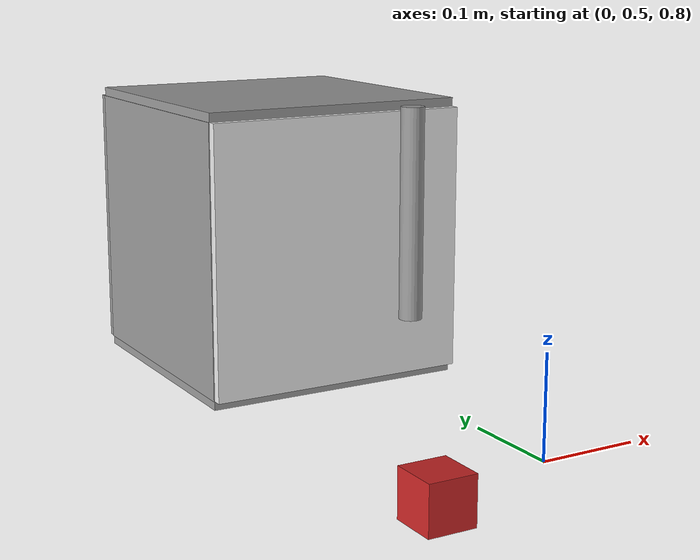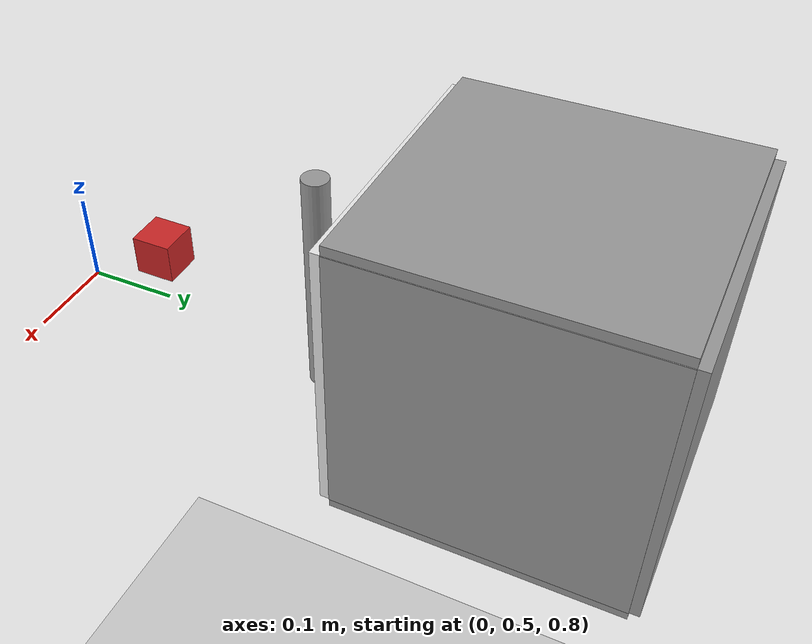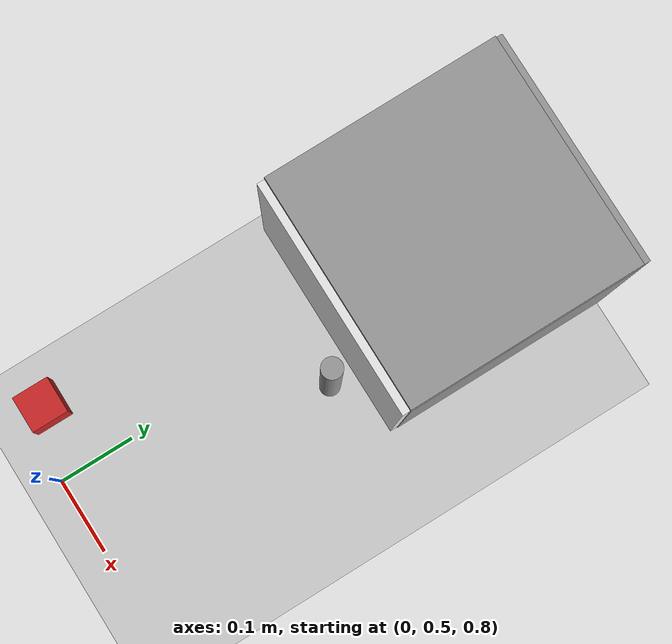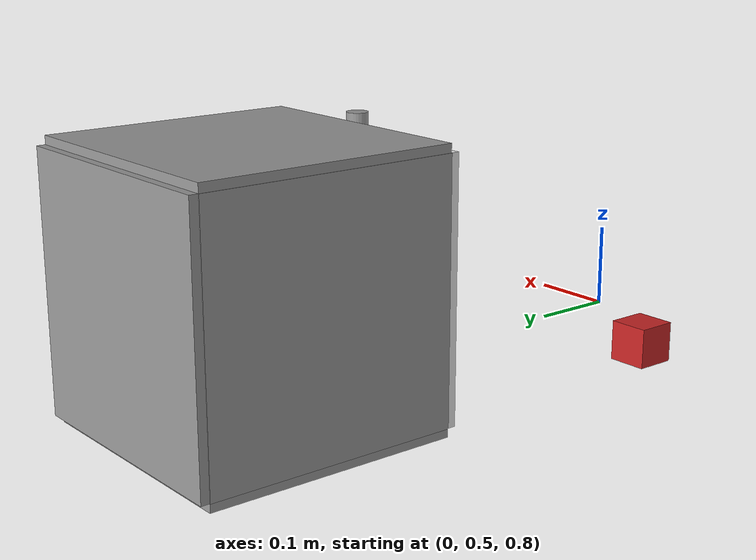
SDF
<sdf version="1.7">
 <world name="default">
  <model name="ground_plane">
   <static>1</static>
   <link name="link">
    <collision name="collision">
     <geometry><plane><normal>0 0 1</normal><size>100 100</size></plane></geometry>
     <surface>
      <contact><collide_bitmask>65535</collide_bitmask></contact>
      <friction><ode><mu>100</mu><mu2>50</mu2></ode></friction>
     </surface>
    </collision>
    <visual name="visual">
     <cast_shadows>0</cast_shadows>
     <geometry><plane><normal>0 0 1</normal><size>100 100</size></plane></geometry>
     <material>
      <script><uri>file://media/materials/scripts/gazebo.material</uri><name>Gazebo/Grey</name></script>
     </material>
    </visual>
   </link>
  </model>
  <model name="unit_box">
   <pose>-0.095003 0.525094 0.777384 1.6e-05 0.000132 1.6e-05</pose>
   <link name="link">
    <inertial>
     <mass>1</mass>
     <inertia>
      <ixx>0.166667</ixx>
      <ixy>0</ixy>
      <ixz>0</ixz>
      <iyy>0.166667</iyy>
      <iyz>0</iyz>
      <izz>0.166667</izz>
     </inertia>
    </inertial>
    <collision name="collision"><geometry><box><size>0.05 0.05 0.05</size></box></geometry></collision>
    <visual name="visual">
     <geometry><box><size>0.05 0.05 0.05</size></box></geometry>
     <material>
      <script><name>Gazebo/Red</name><uri>file://media/materials/scripts/gazebo.material</uri></script>
     </material>
    </visual>
   </link>
  </model>
  <model name="Cabinet30">
   <link name="link_0">
    <inertial>
     <mass>1</mass>
     <inertia>
      <ixx>0.166667</ixx>
      <ixy>0</ixy>
      <ixz>0</ixz>
      <iyy>0.166667</iyy>
      <iyz>0</iyz>
      <izz>0.166667</izz>
     </inertia>
     <joint name="bc" type="fixed">
      <parent>world</parent>
      <child>Cabinet30::link_0</child>
      <physics>
       <ode><implicit_spring_damper>1</implicit_spring_damper><cfm>0.9</cfm><erp>0.2</erp></ode>
       <provide_feedback>1</provide_feedback>
      </physics>
     </joint>
    </inertial>
    <pose>0.028253 0.00951 -0.156009 0 -0 0</pose>
    <visual name="visual">
     <geometry><box><size>0.3 0.3 0.02</size></box></geometry>
     <material>
      <lighting>1</lighting>
      <script><uri>file://media/materials/scripts/gazebo.material</uri><name>Gazebo/Grey</name></script>
      <shader type="pixel"><normal_map>__default__</normal_map></shader>
      <ambient>0.3 0.3 0.3 1</ambient>
      <diffuse>0.7 0.7 0.7 1</diffuse>
      <specular>0.01 0.01 0.01 1</specular>
      <emissive>0 0 0 1</emissive>
     </material>
    </visual>
    <collision name="collision">
     <geometry><box><size>0.3 0.3 0.02</size></box></geometry>
     <surface>
      <friction>
       <ode><mu>1</mu><mu2>1</mu2><fdir1>0 0 0</fdir1><slip1>0</slip1><slip2>0</slip2></ode>
       <torsional>
        <coefficient>1</coefficient>
        <patch_radius>0</patch_radius>
        <surface_radius>0</surface_radius>
        <use_patch_radius>1</use_patch_radius>
        <ode><slip>0</slip></ode>
       </torsional>
      </friction>
      <bounce><restitution_coefficient>0</restitution_coefficient><threshold>1e+06</threshold></bounce>
      <contact>
       <collide_without_contact>0</collide_without_contact>
       <collide_without_contact_bitmask>1</collide_without_contact_bitmask>
       <collide_bitmask>1</collide_bitmask>
       <ode>
        <soft_cfm>0</soft_cfm>
        <soft_erp>0.2</soft_erp>
        <kp>1e+13</kp>
        <kd>1</kd>
        <max_vel>0.01</max_vel>
        <min_depth>0</min_depth>
       </ode>
       <bullet>
        <split_impulse>1</split_impulse>
        <split_impulse_penetration_threshold>-0.01</split_impulse_penetration_threshold>
        <soft_cfm>0</soft_cfm>
        <soft_erp>0.2</soft_erp>
        <kp>1e+13</kp>
        <kd>1</kd>
       </bullet>
      </contact>
     </surface>
    </collision>
   </link>
   <link name="link_0_clone">
    <inertial>
     <mass>1</mass>
     <inertia>
      <ixx>0.166667</ixx>
      <ixy>0</ixy>
      <ixz>0</ixz>
      <iyy>0.166667</iyy>
      <iyz>0</iyz>
      <izz>0.166667</izz>
     </inertia>
    </inertial>
    <pose>0.028253 0.00951 0.143991 0 -0 0</pose>
    <visual name="visual">
     <geometry><box><size>0.3 0.3 0.02</size></box></geometry>
     <material>
      <lighting>1</lighting>
      <script><uri>file://media/materials/scripts/gazebo.material</uri><name>Gazebo/Grey</name></script>
      <shader type="pixel"><normal_map>__default__</normal_map></shader>
      <ambient>0.3 0.3 0.3 1</ambient>
      <diffuse>0.7 0.7 0.7 1</diffuse>
      <specular>0.01 0.01 0.01 1</specular>
      <emissive>0 0 0 1</emissive>
     </material>
    </visual>
    <collision name="collision">
     <geometry><box><size>0.3 0.3 0.02</size></box></geometry>
     <surface>
      <friction>
       <ode><mu>1</mu><mu2>1</mu2><fdir1>0 0 0</fdir1><slip1>0</slip1><slip2>0</slip2></ode>
       <torsional>
        <coefficient>1</coefficient>
        <patch_radius>0</patch_radius>
        <surface_radius>0</surface_radius>
        <use_patch_radius>1</use_patch_radius>
        <ode><slip>0</slip></ode>
       </torsional>
      </friction>
      <bounce><restitution_coefficient>0</restitution_coefficient><threshold>1e+06</threshold></bounce>
      <contact>
       <collide_without_contact>0</collide_without_contact>
       <collide_without_contact_bitmask>1</collide_without_contact_bitmask>
       <collide_bitmask>1</collide_bitmask>
       <ode>
        <soft_cfm>0</soft_cfm>
        <soft_erp>0.2</soft_erp>
        <kp>1e+13</kp>
        <kd>1</kd>
        <max_vel>0.01</max_vel>
        <min_depth>0</min_depth>
       </ode>
       <bullet>
        <split_impulse>1</split_impulse>
        <split_impulse_penetration_threshold>-0.01</split_impulse_penetration_threshold>
        <soft_cfm>0</soft_cfm>
        <soft_erp>0.2</soft_erp>
        <kp>1e+13</kp>
        <kd>1</kd>
       </bullet>
      </contact>
     </surface>
    </collision>
   </link>
   <link name="link_0_clone_clone">
    <inertial>
     <mass>1</mass>
     <inertia>
      <ixx>0.166667</ixx>
      <ixy>0</ixy>
      <ixz>0</ixz>
      <iyy>0.166667</iyy>
      <iyz>0</iyz>
      <izz>0.166667</izz>
     </inertia>
    </inertial>
    <pose>0.028253 0.15951 -0.006009 0 -0 0</pose>
    <visual name="visual">
     <geometry><box><size>0.3 0.002 0.3</size></box></geometry>
     <material>
      <lighting>1</lighting>
      <script><uri>file://media/materials/scripts/gazebo.material</uri><name>Gazebo/Grey</name></script>
      <shader type="pixel"><normal_map>__default__</normal_map></shader>
      <ambient>0.3 0.3 0.3 1</ambient>
      <diffuse>0.7 0.7 0.7 1</diffuse>
      <specular>0.01 0.01 0.01 1</specular>
      <emissive>0 0 0 1</emissive>
     </material>
    </visual>
    <collision name="collision">
     <geometry><box><size>0.3 0.02 0.3</size></box></geometry>
     <surface>
      <friction>
       <ode><mu>1</mu><mu2>1</mu2><fdir1>0 0 0</fdir1><slip1>0</slip1><slip2>0</slip2></ode>
       <torsional>
        <coefficient>1</coefficient>
        <patch_radius>0</patch_radius>
        <surface_radius>0</surface_radius>
        <use_patch_radius>1</use_patch_radius>
        <ode><slip>0</slip></ode>
       </torsional>
      </friction>
      <bounce><restitution_coefficient>0</restitution_coefficient><threshold>1e+06</threshold></bounce>
      <contact>
       <collide_without_contact>0</collide_without_contact>
       <collide_without_contact_bitmask>1</collide_without_contact_bitmask>
       <collide_bitmask>1</collide_bitmask>
       <ode>
        <soft_cfm>0</soft_cfm>
        <soft_erp>0.2</soft_erp>
        <kp>1e+13</kp>
        <kd>1</kd>
        <max_vel>0.01</max_vel>
        <min_depth>0</min_depth>
       </ode>
       <bullet>
        <split_impulse>1</split_impulse>
        <split_impulse_penetration_threshold>-0.01</split_impulse_penetration_threshold>
        <soft_cfm>0</soft_cfm>
        <soft_erp>0.2</soft_erp>
        <kp>1e+13</kp>
        <kd>1</kd>
       </bullet>
      </contact>
     </surface>
    </collision>
   </link>
   <link name="link_0_clone_clone_clone">
    <inertial>
     <mass>1</mass>
     <inertia>
      <ixx>0.166667</ixx>
      <ixy>0</ixy>
      <ixz>0</ixz>
      <iyy>0.166667</iyy>
      <iyz>0</iyz>
      <izz>0.166667</izz>
     </inertia>
    </inertial>
    <pose>0.028253 -0.14049 -0.006009 0 -0 0</pose>
    <visual name="visual">
     <geometry><box><size>0.3 0.002 0.3</size></box></geometry>
     <material>
      <lighting>1</lighting>
      <script><uri>file://media/materials/scripts/gazebo.material</uri><name>Gazebo/Grey</name></script>
      <shader type="pixel"><normal_map>__default__</normal_map></shader>
      <ambient>0.3 0.3 0.3 1</ambient>
      <diffuse>0.7 0.7 0.7 1</diffuse>
      <specular>0.01 0.01 0.01 1</specular>
      <emissive>0 0 0 1</emissive>
     </material>
    </visual>
    <collision name="collision">
     <geometry><box><size>0.3 0.02 0.3</size></box></geometry>
     <surface>
      <friction>
       <ode><mu>1</mu><mu2>1</mu2><fdir1>0 0 0</fdir1><slip1>0</slip1><slip2>0</slip2></ode>
       <torsional>
        <coefficient>1</coefficient>
        <patch_radius>0</patch_radius>
        <surface_radius>0</surface_radius>
        <use_patch_radius>1</use_patch_radius>
        <ode><slip>0</slip></ode>
       </torsional>
      </friction>
      <bounce><restitution_coefficient>0</restitution_coefficient><threshold>1e+06</threshold></bounce>
      <contact>
       <collide_without_contact>0</collide_without_contact>
       <collide_without_contact_bitmask>1</collide_without_contact_bitmask>
       <collide_bitmask>1</collide_bitmask>
       <ode>
        <soft_cfm>0</soft_cfm>
        <soft_erp>0.2</soft_erp>
        <kp>1e+13</kp>
        <kd>1</kd>
        <max_vel>0.01</max_vel>
        <min_depth>0</min_depth>
       </ode>
       <bullet>
        <split_impulse>1</split_impulse>
        <split_impulse_penetration_threshold>-0.01</split_impulse_penetration_threshold>
        <soft_cfm>0</soft_cfm>
        <soft_erp>0.2</soft_erp>
        <kp>1e+13</kp>
        <kd>1</kd>
       </bullet>
      </contact>
     </surface>
    </collision>
   </link>
   <link name="link_0_clone_clone_clone_clone">
    <inertial>
     <mass>1</mass>
     <inertia>
      <ixx>0.166667</ixx>
      <ixy>0</ixy>
      <ixz>0</ixz>
      <iyy>0.166667</iyy>
      <iyz>0</iyz>
      <izz>0.166667</izz>
     </inertia>
    </inertial>
    <pose>0.178253 0.00951 -0.006009 0 -0 0</pose>
    <visual name="visual">
     <geometry><box><size>0.02 0.3 0.3</size></box></geometry>
     <material>
      <lighting>1</lighting>
      <script><uri>file://media/materials/scripts/gazebo.material</uri><name>Gazebo/Grey</name></script>
      <shader type="pixel"><normal_map>__default__</normal_map></shader>
      <ambient>0.3 0.3 0.3 1</ambient>
      <diffuse>0.7 0.7 0.7 1</diffuse>
      <specular>0.01 0.01 0.01 1</specular>
      <emissive>0 0 0 1</emissive>
     </material>
    </visual>
    <collision name="collision">
     <geometry><box><size>0.02 0.3 0.3</size></box></geometry>
     <surface>
      <friction>
       <ode><mu>1</mu><mu2>1</mu2><fdir1>0 0 0</fdir1><slip1>0</slip1><slip2>0</slip2></ode>
       <torsional>
        <coefficient>1</coefficient>
        <patch_radius>0</patch_radius>
        <surface_radius>0</surface_radius>
        <use_patch_radius>1</use_patch_radius>
        <ode><slip>0</slip></ode>
       </torsional>
      </friction>
      <bounce><restitution_coefficient>0</restitution_coefficient><threshold>1e+06</threshold></bounce>
      <contact>
       <collide_without_contact>0</collide_without_contact>
       <collide_without_contact_bitmask>1</collide_without_contact_bitmask>
       <collide_bitmask>1</collide_bitmask>
       <ode>
        <soft_cfm>0</soft_cfm>
        <soft_erp>0.2</soft_erp>
        <kp>1e+13</kp>
        <kd>1</kd>
        <max_vel>0.01</max_vel>
        <min_depth>0</min_depth>
       </ode>
       <bullet>
        <split_impulse>1</split_impulse>
        <split_impulse_penetration_threshold>-0.01</split_impulse_penetration_threshold>
        <soft_cfm>0</soft_cfm>
        <soft_erp>0.2</soft_erp>
        <kp>1e+13</kp>
        <kd>1</kd>
       </bullet>
      </contact>
     </surface>
    </collision>
   </link>
   <link name="link_0_clone_clone_clone_clone_clone">
    <inertial>
     <mass>1</mass>
     <inertia>
      <ixx>0.166667</ixx>
      <ixy>0</ixy>
      <ixz>0</ixz>
      <iyy>0.166667</iyy>
      <iyz>0</iyz>
      <izz>0.166667</izz>
     </inertia>
    </inertial>
    <pose>-0.121747 0.00951 -0.006009 0 -0 0</pose>
    <visual name="visual">
     <geometry><box><size>0.02 0.3 0.3</size></box></geometry>
     <material>
      <script><name>Gazebo/White</name><uri>file://media/materials/scripts/gazebo.material</uri></script>
     </material>
    </visual>
    <collision name="collision">
     <geometry><box><size>0.02 0.3 0.3</size></box></geometry>
     <surface>
      <friction>
       <ode><mu>1</mu><mu2>1</mu2><fdir1>0 0 0</fdir1><slip1>0</slip1><slip2>0</slip2></ode>
       <torsional>
        <coefficient>1</coefficient>
        <patch_radius>0</patch_radius>
        <surface_radius>0</surface_radius>
        <use_patch_radius>1</use_patch_radius>
        <ode><slip>0</slip></ode>
       </torsional>
      </friction>
      <bounce><restitution_coefficient>0</restitution_coefficient><threshold>1e+06</threshold></bounce>
      <contact>
       <collide_without_contact>0</collide_without_contact>
       <collide_without_contact_bitmask>1</collide_without_contact_bitmask>
       <collide_bitmask>1</collide_bitmask>
       <ode>
        <soft_cfm>0</soft_cfm>
        <soft_erp>0.2</soft_erp>
        <kp>1e+13</kp>
        <kd>1</kd>
        <max_vel>0.01</max_vel>
        <min_depth>0</min_depth>
       </ode>
       <bullet>
        <split_impulse>1</split_impulse>
        <split_impulse_penetration_threshold>-0.01</split_impulse_penetration_threshold>
        <soft_cfm>0</soft_cfm>
        <soft_erp>0.2</soft_erp>
        <kp>1e+13</kp>
        <kd>1</kd>
       </bullet>
      </contact>
     </surface>
    </collision>
   </link>
   <link name="link_1">
    <inertial>
     <mass>0.000152659</mass>
     <inertia>
      <ixx>7.05744e-07</ixx>
      <ixy>0</ixy>
      <ixz>0</ixz>
      <iyy>7.05744e-07</iyy>
      <iyz>0</iyz>
      <izz>1.28386e-08</izz>
     </inertia>
    </inertial>
    <pose>-0.16952 -0.057059 0.036056 0 -0 0</pose>
    <visual name="visual">
     <geometry><cylinder><radius>0.0129692</radius><length>0.23446</length></cylinder></geometry>
     <material>
      <lighting>1</lighting>
      <script><uri>file://media/materials/scripts/gazebo.material</uri><name>Gazebo/Grey</name></script>
      <shader type="pixel"/>
      <emissive>0 0 0 1</emissive>
     </material>
    </visual>
    <collision name="collision">
     <geometry><cylinder><radius>0.012969</radius><length>0.23446</length></cylinder></geometry>
     <surface>
      <friction>
       <ode><mu>1</mu><mu2>1</mu2><fdir1>0 0 0</fdir1><slip1>0</slip1><slip2>0</slip2></ode>
       <torsional>
        <coefficient>1</coefficient>
        <patch_radius>0</patch_radius>
        <surface_radius>0</surface_radius>
        <use_patch_radius>1</use_patch_radius>
        <ode><slip>0</slip></ode>
       </torsional>
      </friction>
      <bounce><restitution_coefficient>0</restitution_coefficient><threshold>1e+06</threshold></bounce>
      <contact>
       <collide_without_contact>0</collide_without_contact>
       <collide_without_contact_bitmask>1</collide_without_contact_bitmask>
       <collide_bitmask>1</collide_bitmask>
       <ode>
        <soft_cfm>0</soft_cfm>
        <soft_erp>0.2</soft_erp>
        <kp>1e+13</kp>
        <kd>1</kd>
        <max_vel>0.01</max_vel>
        <min_depth>0</min_depth>
       </ode>
       <bullet>
        <split_impulse>1</split_impulse>
        <split_impulse_penetration_threshold>-0.01</split_impulse_penetration_threshold>
        <soft_cfm>0</soft_cfm>
        <soft_erp>0.2</soft_erp>
        <kp>1e+13</kp>
        <kd>1</kd>
       </bullet>
      </contact>
     </surface>
    </collision>
   </link>
   <joint name="link_0_JOINT_0" type="fixed">
    <parent>link_0</parent>
    <child>link_0_clone_clone_clone_clone</child>
    <physics>
     <ode><limit><cfm>0</cfm><erp>0.2</erp></limit><suspension><cfm>0</cfm><erp>0.2</erp></suspension></ode>
    </physics>
   </joint>
   <joint name="link_0_JOINT_1" type="fixed">
    <parent>link_0</parent>
    <child>link_0_clone_clone</child>
    <physics>
     <ode><limit><cfm>0</cfm><erp>0.2</erp></limit><suspension><cfm>0</cfm><erp>0.2</erp></suspension></ode>
    </physics>
   </joint>
   <joint name="link_0_JOINT_2" type="fixed">
    <parent>link_0</parent>
    <child>link_0_clone_clone_clone</child>
    <physics>
     <ode><limit><cfm>0</cfm><erp>0.2</erp></limit><suspension><cfm>0</cfm><erp>0.2</erp></suspension></ode>
    </physics>
   </joint>
   <joint name="link_0_JOINT_3" type="fixed">
    <parent>link_0</parent>
    <child>link_0_clone</child>
    <physics>
     <ode><limit><cfm>0</cfm><erp>0.2</erp></limit><suspension><cfm>0</cfm><erp>0.2</erp></suspension></ode>
    </physics>
   </joint>
   <joint name="link_0_JOINT_4" type="revolute">
    <parent>link_0</parent>
    <child>link_0_clone_clone_clone_clone_clone</child>
    <pose>0 0.16 0 0 -0 0</pose>
    <axis>
     <xyz>0 0 1</xyz>
     <limit>
      <lower>-1.79769e+308</lower>
      <upper>1.79769e+308</upper>
      <effort>-1</effort>
      <velocity>-1</velocity>
     </limit>
     <dynamics>
      <spring_reference>0</spring_reference>
      <spring_stiffness>0</spring_stiffness>
      <damping>0</damping>
      <friction>0</friction>
     </dynamics>
    </axis>
    <physics>
     <ode><limit><cfm>0</cfm><erp>0.2</erp></limit><suspension><cfm>0</cfm><erp>0.2</erp></suspension></ode>
    </physics>
   </joint>
   <joint name="link_0_clone_clone_clone_clone_clone_JOINT_5" type="revolute">
    <parent>link_0_clone_clone_clone_clone_clone</parent>
    <child>link_1</child>
    <axis>
     <xyz>0 0 1</xyz>
     <limit>
      <lower>-1.79769e+308</lower>
      <upper>1.79769e+308</upper>
      <effort>-1</effort>
      <velocity>-1</velocity>
     </limit>
     <dynamics>
      <spring_reference>0</spring_reference>
      <spring_stiffness>0</spring_stiffness>
      <damping>0</damping>
      <friction>0</friction>
     </dynamics>
    </axis>
    <physics>
     <ode><limit><cfm>0</cfm><erp>0.2</erp></limit><suspension><cfm>0</cfm><erp>0.2</erp></suspension></ode>
    </physics>
   </joint>
   <static>0</static>
   <pose>0.018291 1.00808 0.921847 0.000134 -3e-05 1.57286</pose>
  </model>
 </world>
</sdf>
